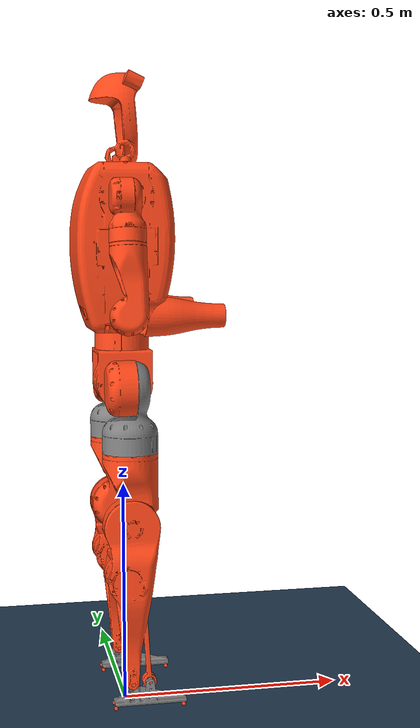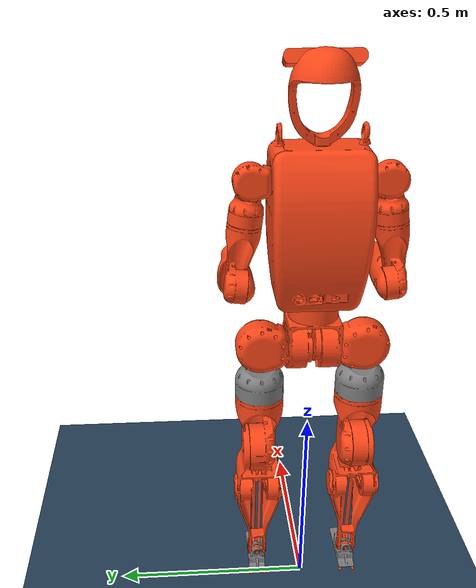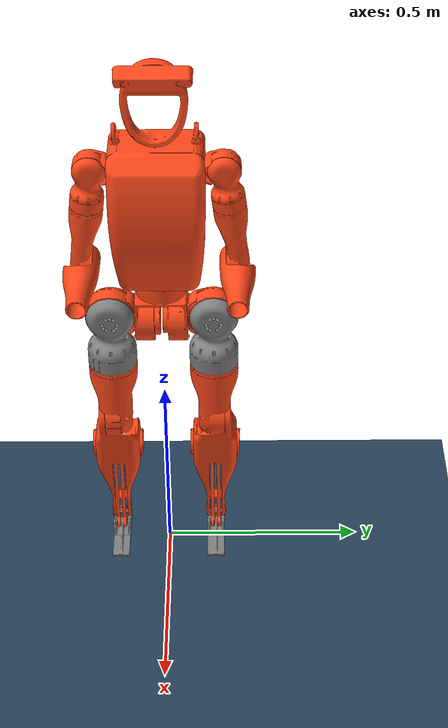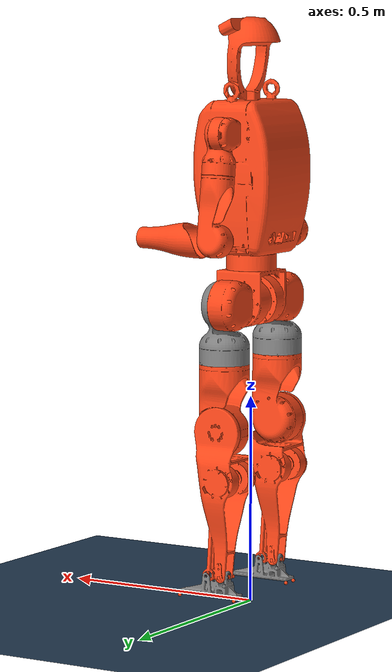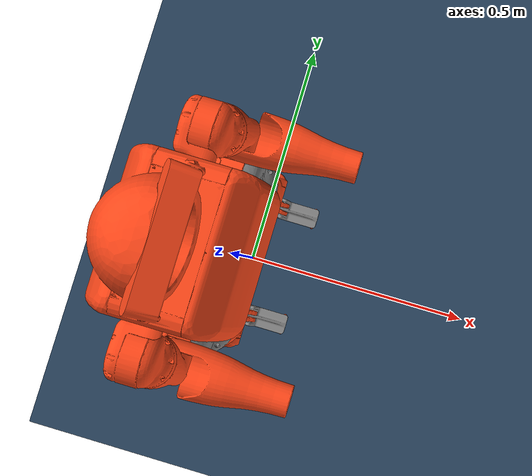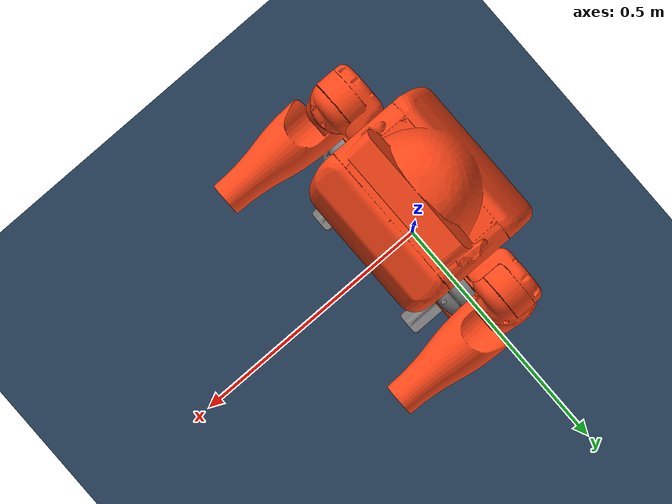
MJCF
<mujoco model="q2_19dof scene">
  <include file="q2_19dof.xml"/>

  <statistic center="1.0 0.7 1.0" extent="0.8"/>

  <visual>
    <headlight diffuse="0.6 0.6 0.6" ambient="0.1 0.1 0.1" specular="0.9 0.9 0.9"/>
    <rgba haze="0.15 0.25 0.35 1"/>
    <global azimuth="-140" elevation="-20"/>
  </visual>

  <asset>
    <texture type="skybox" builtin="flat" rgb1="0 0 0" rgb2="0 0 0" width="512" height="3072"/>
    <texture type="2d" name="groundplane" builtin="checker" mark="edge" rgb1="0.2 0.3 0.4" rgb2="0.1 0.2 0.3" markrgb="0.8 0.8 0.8" width="300" height="300"/>
    <material name="groundplane" texture="groundplane" texuniform="true" texrepeat="5 5" reflectance="0.2"/>
  </asset>

  <worldbody>
    <light pos="1 0 3.5" dir="0 0 -1" directional="true"/>
    <geom name="floor" size="0 0 0.05" type="plane" material="groundplane"/>
        <!-- 地面 -->

  </worldbody>
</mujoco>

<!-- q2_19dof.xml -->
<mujoco model="q2_19dof">
  <default>
    <default class="robot">
      <default class="motor">
        <joint />
        <motor />
      </default>
      <default class="visual">
        <geom material="visualgeom" contype="0" conaffinity="0" group="2" />
      </default>
      <default class="collision">
        <geom material="collision_material" condim="3" contype="0" conaffinity="1" priority="1" group="1" solref="0.005 1" friction="1 0.01 0.01" />
        <equality solimp="0.99 0.999 1e-05" solref="0.005 1" />
      </default>
    </default>
    <joint damping="0.001" armature="0.01" frictionloss="0.1"/>
  </default>

  <compiler angle="radian" />

  <option timestep='0.001' iterations='50' solver='PGS' gravity='0 0 -9.81'>
      <flag frictionloss="enable"/>
  </option>

  <asset>
    <material name="default_material" rgba="0.7 0.7 0.7 1" />
    <material name="collision_material" rgba="1.0 0.28 0.1 0.9" />
    <mesh name="pelvis.STL" file="meshes/pelvis.STL" />
    <mesh name="left_hip_pitch_link.STL" file="meshes/left_hip_pitch_link.STL" />
    <mesh name="left_hip_roll_link.STL" file="meshes/left_hip_roll_link.STL" />
    <mesh name="left_hip_yaw_link.STL" file="meshes/left_hip_yaw_link.STL" />
    <mesh name="left_knee_link.STL" file="meshes/left_knee_link.STL" />
    <mesh name="left_ankle_pitch_link.STL" file="meshes/left_ankle_pitch_link.STL" />
    <mesh name="left_ankle_roll_link.STL" file="meshes/left_ankle_roll_link.STL" />
    <mesh name="right_hip_pitch_link.STL" file="meshes/right_hip_pitch_link.STL" />
    <mesh name="right_hip_roll_link.STL" file="meshes/right_hip_roll_link.STL" />
    <mesh name="right_hip_yaw_link.STL" file="meshes/right_hip_yaw_link.STL" />
    <mesh name="right_knee_link.STL" file="meshes/right_knee_link.STL" />
    <mesh name="right_ankle_pitch_link.STL" file="meshes/right_ankle_pitch_link.STL" />
    <mesh name="right_ankle_roll_link.STL" file="meshes/right_ankle_roll_link.STL" />
    <mesh name="torso_link.STL" file="meshes/torso_link.STL" />
    <mesh name="left_shoulder_pitch_link.STL" file="meshes/left_shoulder_pitch_link.STL" />
    <mesh name="left_shoulder_roll_link.STL" file="meshes/left_shoulder_roll_link.STL" />
    <mesh name="left_shoulder_yaw_link.STL" file="meshes/left_shoulder_yaw_link.STL" />
    <mesh name="left_elbow_link.STL" file="meshes/left_elbow_link.STL" />
    <mesh name="right_shoulder_pitch_link.STL" file="meshes/right_shoulder_pitch_link.STL" />
    <mesh name="right_shoulder_roll_link.STL" file="meshes/right_shoulder_roll_link.STL" />
    <mesh name="right_shoulder_yaw_link.STL" file="meshes/right_shoulder_yaw_link.STL" />
    <mesh name="right_elbow_link.STL" file="meshes/right_elbow_link.STL" />
  </asset>

  <worldbody>
    <body name="pelvis" pos="0.00000000 0.00000000 0.800000" >
        <inertial pos="0.0000000 0.0000000 -0.0377830" quat="1.0 0.0 0.0 0.0" mass="5.0175069" diaginertia="0.0180892 0.016415 0.0108703" />
        <joint name="floating_base_joint" type="free" limited="false" actuatorfrclimited="false"/>
        <geom name="pelvis_collision" pos="0 0 0" quat="1.0 0.0 0.0 0.0" type="mesh" mesh="pelvis.STL" class="collision" />
        <geom name="pelvis_visual" pos="0 0 0" quat="1.0 0.0 0.0 0.0" material="" type="mesh" mesh="pelvis.STL" class="visual" />
        <body name="left_hip_pitch_link" pos="0 0.056 -0.0685" quat="1.0 0.0 0.0 0.0">
          <joint name="left_hip_pitch_joint" type="hinge" ref="0.0" class="motor" range="-2.35 2.35" axis="0 1 0" />
          <inertial pos="-0.0161091 0.0642172 0.0000000" quat="1.0 0.0 0.0 0.0" mass="1.871603" diaginertia="0.0035823 0.0021368 0.0024927" />
          <geom name="left_hip_pitch_link_collision" pos="0 0 0" quat="1.0 0.0 0.0 0.0" type="mesh" mesh="left_hip_pitch_link.STL" class="collision" />
          <geom name="left_hip_pitch_link_visual" pos="0 0 0" quat="1.0 0.0 0.0 0.0" material="" type="mesh" mesh="left_hip_pitch_link.STL" class="visual" />
          <body name="left_hip_roll_link" pos="0.012 0.069 0" quat="1.0 0.0 0.0 0.0">
            <joint name="left_hip_roll_joint" type="hinge" ref="0.0" class="motor" range="-0.2 2.9" axis="1 0 0" />
            <inertial pos="-0.0070439 -0.0000032 -0.0909871" quat="1.0 0.0 0.0 0.0" mass="2.1194499" diaginertia="0.0063862 0.0063266 0.0036912" />
            <geom name="left_hip_roll_link_visual" pos="0 0 0" quat="1.0 0.0 0.0 0.0" material="" type="mesh" mesh="left_hip_roll_link.STL" class="visual" />
            <body name="left_hip_yaw_link" pos="-0.012 0 -0.1395" quat="1.0 0.0 0.0 0.0">
              <joint name="left_hip_yaw_joint" type="hinge" ref="0.0" class="motor" range="-2.8 2.8" axis="0 0 1" />
              <inertial pos="0.0030582 -0.0028146 -0.1280729" quat="1.0 0.0 0.0 0.0" mass="2.4878491" diaginertia="0.0107399 0.0117862 0.003867" />
              <geom name="left_hip_yaw_link_collision" pos="0 0 0" quat="1.0 0.0 0.0 0.0" type="mesh" mesh="left_hip_yaw_link.STL" class="collision" />
              <geom name="left_hip_yaw_link_visual" pos="0 0 0" quat="1.0 0.0 0.0 0.0" material="" type="mesh" mesh="left_hip_yaw_link.STL" class="visual" />
              <body name="left_knee_link" pos="0 0.0255 -0.1605" quat="1.0 0.0 0.0 0.0">
                <joint name="left_knee_joint" type="hinge" ref="0.0" class="motor" range="-0.26 2.05" axis="0 1 0" />
                <inertial pos="0.0016871 -0.0202758 -0.1209121" quat="1.0 0.0 0.0 0.0" mass="2.1687705" diaginertia="0.0161842 0.0144942 0.0039929" />
                <geom name="left_knee_link_collision" pos="0 0 0" quat="1.0 0.0 0.0 0.0" type="mesh" mesh="left_knee_link.STL" class="collision" />
                <geom name="left_knee_link_visual" pos="0 0 0" quat="1.0 0.0 0.0 0.0" material="" type="mesh" mesh="left_knee_link.STL" class="visual" />
                <body name="left_ankle_pitch_link" pos="0 -0.0255 -0.35" quat="1.0 0.0 0.0 0.0">
                  <joint name="left_ankle_pitch_joint" type="hinge" ref="0.0" class="motor" range="-0.75 0.75" axis="0 1 0" />
                  <inertial pos="0.0000000 0.0000000 0.0000279" quat="1.0 0.0 0.0 0.0" mass="0.0312897" diaginertia="6.8e-06 1.6e-06 7.3e-06" />
                  <geom name="left_ankle_pitch_link_collision" pos="0 0 0" quat="1.0 0.0 0.0 0.0" type="mesh" mesh="left_ankle_pitch_link.STL" class="collision" />
                  <geom name="left_ankle_pitch_link_visual" pos="0 0 0" quat="1.0 0.0 0.0 0.0" material="" type="mesh" mesh="left_ankle_pitch_link.STL" class="visual" />
                  <body name="left_ankle_roll_link" pos="0 0 0" quat="1.0 0.0 0.0 0.0">
                    <inertial pos="0.0300502 0.0000000 -0.0348065" quat="1.0 0.0 0.0 0.0" mass="0.445514" diaginertia="0.0001691 0.0007648 0.0007313" />
                    <geom name="left_ankle_roll_link_collision_0" pos="0.112 -0.019 -0.053" quat="1.0 0.0 0.0 0.0" type="sphere" size="0.0045" class="collision" />
                    <geom name="left_ankle_roll_link_collision_1" pos="0.112 0.019 -0.053" quat="1.0 0.0 0.0 0.0" type="sphere" size="0.0045" class="collision" />
                    <geom name="left_ankle_roll_link_collision_2" pos="-0.038 -0.018 -0.053" quat="1.0 0.0 0.0 0.0" type="sphere" size="0.0045" class="collision" />
                    <geom name="left_ankle_roll_link_collision_3" pos="-0.038 0.018 -0.053" quat="1.0 0.0 0.0 0.0" type="sphere" size="0.0045" class="collision" />
                    <geom name="left_ankle_roll_link_visual" pos="0 0 0" quat="1.0 0.0 0.0 0.0" material="" type="mesh" mesh="left_ankle_roll_link.STL" class="visual" />
                  </body>
                </body>
              </body>
            </body>
          </body>
        </body>
        <body name="right_hip_pitch_link" pos="0 -0.056 -0.0685" quat="1.0 0.0 0.0 0.0">
          <joint name="right_hip_pitch_joint" type="hinge" ref="0.0" class="motor" range="-2.35 2.35" axis="0 1 0" />
          <inertial pos="-0.0161085 -0.0642181 0.0000000" quat="1.0 0.0 0.0 0.0" mass="1.8719556" diaginertia="0.0035829 0.0021371 0.002493" />
          <geom name="right_hip_pitch_link_collision" pos="0 0 0" quat="1.0 0.0 0.0 0.0" type="mesh" mesh="right_hip_pitch_link.STL" class="collision" />
          <geom name="right_hip_pitch_link_visual" pos="0 0 0" quat="1.0 0.0 0.0 0.0" material="" type="mesh" mesh="right_hip_pitch_link.STL" class="visual" />
          <body name="right_hip_roll_link" pos="0.012 -0.069 0" quat="1.0 0.0 0.0 0.0">
            <joint name="right_hip_roll_joint" type="hinge" ref="0.0" class="motor" range="-2.9 0.2" axis="1 0 0" />
            <inertial pos="-0.0070439 -0.0000032 -0.0909871" quat="1.0 0.0 0.0 0.0" mass="2.1194499" diaginertia="0.0063862 0.0063266 0.0036912" />
            <geom name="right_hip_roll_link_visual" pos="0 0 0" quat="1.0 0.0 0.0 0.0" material="" type="mesh" mesh="right_hip_roll_link.STL" class="visual" />
            <body name="right_hip_yaw_link" pos="-0.012 0 -0.1395" quat="1.0 0.0 0.0 0.0">
              <joint name="right_hip_yaw_joint" type="hinge" ref="0.0" class="motor" range="-2.8 2.8" axis="0 0 1" />
              <inertial pos="0.0030618 0.0028152 -0.1281604" quat="1.0 0.0 0.0 0.0" mass="2.4854678" diaginertia="0.0107105 0.0117564 0.0038603" />
              <geom name="right_hip_yaw_link_collision" pos="0 0 0" quat="1.0 0.0 0.0 0.0" type="mesh" mesh="right_hip_yaw_link.STL" class="collision" />
              <geom name="right_hip_yaw_link_visual" pos="0 0 0" quat="1.0 0.0 0.0 0.0" material="" type="mesh" mesh="right_hip_yaw_link.STL" class="visual" />
              <body name="right_knee_link" pos="0 -0.0255 -0.1605" quat="1.0 0.0 0.0 0.0">
                <joint name="right_knee_joint" type="hinge" ref="0.0" class="motor" range="-0.26 2.05" axis="0 1 0" />
                <inertial pos="0.0016703 0.0200408 -0.1207901" quat="1.0 0.0 0.0 0.0" mass="2.1688182" diaginertia="0.0162684 0.0145337 0.0040332" />
                <geom name="right_knee_link_collision" pos="0 0 0" quat="1.0 0.0 0.0 0.0" type="mesh" mesh="right_knee_link.STL" class="collision" />
                <geom name="right_knee_link_visual" pos="0 0 0" quat="1.0 0.0 0.0 0.0" material="" type="mesh" mesh="right_knee_link.STL" class="visual" />
                <body name="right_ankle_pitch_link" pos="0 0.0255 -0.35" quat="1.0 0.0 0.0 0.0">
                  <joint name="right_ankle_pitch_joint" type="hinge" ref="0.0" class="motor" range="-0.75 0.75" axis="0 1 0" />
                  <inertial pos="0.0000000 0.0000000 0.0000279" quat="1.0 0.0 0.0 0.0" mass="0.0312897" diaginertia="6.8e-06 1.6e-06 7.3e-06" />
                  <geom name="right_ankle_pitch_link_collision" pos="0 0 0" quat="1.0 0.0 0.0 0.0" type="mesh" mesh="right_ankle_pitch_link.STL" class="collision" />
                  <geom name="right_ankle_pitch_link_visual" pos="0 0 0" quat="1.0 0.0 0.0 0.0" material="" type="mesh" mesh="right_ankle_pitch_link.STL" class="visual" />
                  <body name="right_ankle_roll_link" pos="0 0 0" quat="1.0 0.0 0.0 0.0">
                    <inertial pos="0.0300502 0.0000000 -0.0348065" quat="1.0 0.0 0.0 0.0" mass="0.445514" diaginertia="0.0001691 0.0007648 0.0007313" />
                    <geom name="right_ankle_roll_link_collision_0" pos="0.112 -0.019 -0.053" quat="1.0 0.0 0.0 0.0" type="sphere" size="0.0045" class="collision" />
                    <geom name="right_ankle_roll_link_collision_1" pos="0.112 0.019 -0.053" quat="1.0 0.0 0.0 0.0" type="sphere" size="0.0045" class="collision" />
                    <geom name="right_ankle_roll_link_collision_2" pos="-0.038 -0.018 -0.053" quat="1.0 0.0 0.0 0.0" type="sphere" size="0.0045" class="collision" />
                    <geom name="right_ankle_roll_link_collision_3" pos="-0.038 0.018 -0.053" quat="1.0 0.0 0.0 0.0" type="sphere" size="0.0045" class="collision" />
                    <geom name="right_ankle_roll_link_visual" pos="0 0 0" quat="1.0 0.0 0.0 0.0" material="" type="mesh" mesh="right_ankle_roll_link.STL" class="visual" />
                  </body>
                </body>
              </body>
            </body>
          </body>
        </body>
        <body name="torso_link" pos="0 0 0.046" quat="1.0 0.0 0.0 0.0">
          <joint name="torso_joint" type="hinge" ref="0.0" class="motor" range="-1.1 1.1" axis="0 0 1" />
          <inertial pos="0.0004629 -0.0000906 0.1938121" quat="1.0 0.0 0.0 0.0" mass="13.5166565" diaginertia="0.2213687 0.1979885 0.0923944" />
          <geom name="torso_link_collision" pos="0 0 0" quat="1.0 0.0 0.0 0.0" type="mesh" mesh="torso_link.STL" class="collision" />
          <geom name="torso_link_visual" pos="0 0 0" quat="1.0 0.0 0.0 0.0" material="" type="mesh" mesh="torso_link.STL" class="visual" />
          <body name="left_shoulder_pitch_link" pos="0 0.1045 0.2905" quat="1.0 0.0 0.0 0.0">
            <joint name="left_shoulder_pitch_joint" type="hinge" ref="0.0" class="motor" range="-3.14 1.57" axis="0 1 0" />
            <inertial pos="-0.0156870 0.0446137 0.0003011" quat="1.0 0.0 0.0 0.0" mass="0.5474344" diaginertia="0.0002167 0.0001337 0.0001874" />
            <geom name="left_shoulder_pitch_link_collision" pos="0 0 0" quat="1.0 0.0 0.0 0.0" type="mesh" mesh="left_shoulder_pitch_link.STL" class="collision" />
            <geom name="left_shoulder_pitch_link_visual" pos="0 0 0" quat="1.0 0.0 0.0 0.0" material="" type="mesh" mesh="left_shoulder_pitch_link.STL" class="visual" />
            <body name="left_shoulder_roll_link" pos="0.01 0.049 0" quat="0.9982005399352042 0.059964006479444595 0.0 0.0">
              <joint name="left_shoulder_roll_joint" type="hinge" ref="0.0" class="motor" range="-0.01 3.14" axis="1 0 0" />
              <inertial pos="-0.0127037 -0.0001940 -0.0659292" quat="1.0 0.0 0.0 0.0" mass="0.5461248" diaginertia="0.000472 0.0004811 0.0001598" />
              <geom name="left_shoulder_roll_link_collision" pos="0 0 0" quat="1.0 0.0 0.0 0.0" type="mesh" mesh="left_shoulder_roll_link.STL" class="collision" />
              <geom name="left_shoulder_roll_link_visual" pos="0 0 0" quat="1.0 0.0 0.0 0.0" material="" type="mesh" mesh="left_shoulder_roll_link.STL" class="visual" />
              <body name="left_shoulder_yaw_link" pos="-0.016 0 -0.101" quat="1.0 0.0 0.0 0.0">
                <joint name="left_shoulder_yaw_joint" type="hinge" ref="0.0" class="motor" range="-0.8 1.2" axis="0 0 1" />
                <inertial pos="0.0032500 0.0002300 -0.1178721" quat="1.0 0.0 0.0 0.0" mass="0.7134352" diaginertia="0.002108 0.002127 0.0003381" />
                <geom name="left_shoulder_yaw_link_collision" pos="0 0 0" quat="1.0 0.0 0.0 0.0" type="mesh" mesh="left_shoulder_yaw_link.STL" class="collision" />
                <geom name="left_shoulder_yaw_link_visual" pos="0 0 0" quat="1.0 0.0 0.0 0.0" material="" type="mesh" mesh="left_shoulder_yaw_link.STL" class="visual" />
                <body name="left_elbow_link" pos="0 -0.027 -0.149" quat="1.0 0.0 0.0 0.0">
                  <joint name="left_elbow_joint" type="hinge" ref="0.0" class="motor" range="-0.95 1.6" axis="0 1 0" />
                  <inertial pos="0.0914047 0.0199364 -0.0026722" quat="1.0 0.0 0.0 0.0" mass="0.3282012" diaginertia="0.0003673 0.0013996 0.0014536" />
                  <geom name="left_elbow_link_collision" pos="0 0 0" quat="1.0 0.0 0.0 0.0" type="mesh" mesh="left_elbow_link.STL" class="collision" />
                  <geom name="left_elbow_link_visual" pos="0 0 0" quat="1.0 0.0 0.0 0.0" material="" type="mesh" mesh="left_elbow_link.STL" class="visual" />
                </body>
              </body>
            </body>
          </body>
          <body name="right_shoulder_pitch_link" pos="0 -0.1045 0.2905" quat="1.0 0.0 0.0 0.0">
            <joint name="right_shoulder_pitch_joint" type="hinge" ref="0.0" class="motor" range="-3.14 1.57" axis="0 1 0" />
            <inertial pos="-0.0156870 -0.0446137 -0.0003011" quat="1.0 0.0 0.0 0.0" mass="0.5474344" diaginertia="0.0002167 0.0001337 0.0001874" />
            <geom name="right_shoulder_pitch_link_collision" pos="0 0 0" quat="1.0 0.0 0.0 0.0" type="mesh" mesh="right_shoulder_pitch_link.STL" class="collision" />
            <geom name="right_shoulder_pitch_link_visual" pos="0 0 0" quat="1.0 0.0 0.0 0.0" material="" type="mesh" mesh="right_shoulder_pitch_link.STL" class="visual" />
            <body name="right_shoulder_roll_link" pos="0.01 -0.049 0" quat="0.9982005399352042 -0.059964006479444595 0.0 0.0">
              <joint name="right_shoulder_roll_joint" type="hinge" ref="0.0" class="motor" range="-3.4 0.01" axis="1 0 0" />
              <inertial pos="-0.0127037 -0.0001940 -0.0659292" quat="1.0 0.0 0.0 0.0" mass="0.5461248" diaginertia="0.000472 0.0004811 0.0001598" />
              <geom name="right_shoulder_roll_link_collision" pos="0 0 0" quat="1.0 0.0 0.0 0.0" type="mesh" mesh="right_shoulder_roll_link.STL" class="collision" />
              <geom name="right_shoulder_roll_link_visual" pos="0 0 0" quat="1.0 0.0 0.0 0.0" material="" type="mesh" mesh="right_shoulder_roll_link.STL" class="visual" />
              <body name="right_shoulder_yaw_link" pos="-0.016 0 -0.101" quat="1.0 0.0 0.0 0.0">
                <joint name="right_shoulder_yaw_joint" type="hinge" ref="0.0" class="motor" range="-1.2 0.8" axis="0 0 1" />
                <inertial pos="0.0028726 -0.0002293 -0.1176072" quat="1.0 0.0 0.0 0.0" mass="0.7134571" diaginertia="0.0020963 0.0021169 0.0003397" />
                <geom name="right_shoulder_yaw_link_collision" pos="0 0 0" quat="1.0 0.0 0.0 0.0" type="mesh" mesh="right_shoulder_yaw_link.STL" class="collision" />
                <geom name="right_shoulder_yaw_link_visual" pos="0 0 0" quat="1.0 0.0 0.0 0.0" material="" type="mesh" mesh="right_shoulder_yaw_link.STL" class="visual" />
                <body name="right_elbow_link" pos="0 0.027 -0.149" quat="1.0 0.0 0.0 0.0">
                  <joint name="right_elbow_joint" type="hinge" ref="0.0" class="motor" range="-0.95 1.6" axis="0 1 0" />
                  <inertial pos="0.0914095 0.0340633 -0.0026701" quat="1.0 0.0 0.0 0.0" mass="0.32819" diaginertia="0.0003673 0.0013994 0.0014534" />
                  <geom name="right_elbow_link_collision" pos="0 0 0" quat="1.0 0.0 0.0 0.0" type="mesh" mesh="right_elbow_link.STL" class="collision" />
                  <geom name="right_elbow_link_visual" pos="0 0 0" quat="1.0 0.0 0.0 0.0" material="" type="mesh" mesh="right_elbow_link.STL" class="visual" />
                </body>
              </body>
            </body>
          </body>
        </body>
      </body>
  </worldbody>

  <actuator>
    <motor name="left_hip_pitch_joint_ctrl" joint="left_hip_pitch_joint" class="motor" />
    <motor name="left_hip_roll_joint_ctrl" joint="left_hip_roll_joint" class="motor" />
    <motor name="left_hip_yaw_joint_ctrl" joint="left_hip_yaw_joint" class="motor" />
    <motor name="left_knee_joint_ctrl" joint="left_knee_joint" class="motor" />
    <motor name="left_ankle_pitch_joint_ctrl" joint="left_ankle_pitch_joint" class="motor" />
    <motor name="right_hip_pitch_joint_ctrl" joint="right_hip_pitch_joint" class="motor" />
    <motor name="right_hip_roll_joint_ctrl" joint="right_hip_roll_joint" class="motor" />
    <motor name="right_hip_yaw_joint_ctrl" joint="right_hip_yaw_joint" class="motor" />
    <motor name="right_knee_joint_ctrl" joint="right_knee_joint" class="motor" />
    <motor name="right_ankle_pitch_joint_ctrl" joint="right_ankle_pitch_joint" class="motor" />
    <motor name="torso_joint_ctrl" joint="torso_joint" class="motor" />
    <motor name="left_shoulder_pitch_joint_ctrl" joint="left_shoulder_pitch_joint" class="motor" />
    <motor name="left_shoulder_roll_joint_ctrl" joint="left_shoulder_roll_joint" class="motor" />
    <motor name="left_shoulder_yaw_joint_ctrl" joint="left_shoulder_yaw_joint" class="motor" />
    <motor name="left_elbow_joint_ctrl" joint="left_elbow_joint" class="motor" />
    <motor name="right_shoulder_pitch_joint_ctrl" joint="right_shoulder_pitch_joint" class="motor" />
    <motor name="right_shoulder_roll_joint_ctrl" joint="right_shoulder_roll_joint" class="motor" />
    <motor name="right_shoulder_yaw_joint_ctrl" joint="right_shoulder_yaw_joint" class="motor" />
    <motor name="right_elbow_joint_ctrl" joint="right_elbow_joint" class="motor" />
  </actuator>

  <contact>
    <exclude body1="pelvis" body2="left_hip_pitch_link" />
    <exclude body1="left_hip_yaw_link" body2="left_knee_link" />
    <exclude body1="left_knee_link" body2="left_ankle_pitch_link" />
    <exclude body1="left_ankle_pitch_link" body2="left_ankle_roll_link" />
    <exclude body1="pelvis" body2="right_hip_pitch_link" />
    <exclude body1="right_hip_yaw_link" body2="right_knee_link" />
    <exclude body1="right_knee_link" body2="right_ankle_pitch_link" />
    <exclude body1="right_ankle_pitch_link" body2="right_ankle_roll_link" />
    <exclude body1="pelvis" body2="torso_link" />
    <exclude body1="torso_link" body2="left_shoulder_pitch_link" />
    <exclude body1="left_shoulder_pitch_link" body2="left_shoulder_roll_link" />
    <exclude body1="left_shoulder_roll_link" body2="left_shoulder_yaw_link" />
    <exclude body1="left_shoulder_yaw_link" body2="left_elbow_link" />
    <exclude body1="torso_link" body2="right_shoulder_pitch_link" />
    <exclude body1="right_shoulder_pitch_link" body2="right_shoulder_roll_link" />
    <exclude body1="right_shoulder_roll_link" body2="right_shoulder_yaw_link" />
    <exclude body1="right_shoulder_yaw_link" body2="right_elbow_link" />
  </contact>

  <sensor>
    <framepos name="world_site_pos" objtype="site" objname="world_site" />
    <framequat name="world_site_quat" objtype="site" objname="world_site" />
    <framelinvel name="world_site_linvel" objtype="site" objname="world_site" />
    <frameangvel name="world_site_angvel" objtype="site" objname="world_site" />
    <velocimeter name="world_site_vel" site="world_site" />
  </sensor>
    <asset>
        <texture type="skybox" builtin="flat" rgb1="0 0 0" rgb2="0 0 0" width="512" height="3072"/>
        <texture type="2d" name="groundplane" builtin="checker" mark="edge" rgb1="0.2 0.3 0.4" rgb2="0.1 0.2 0.3" markrgb="0.8 0.8 0.8" width="300" height="300"/>
        <material name="groundplane" texture="groundplane" texuniform="true" texrepeat="5 5" reflectance="0.2"/>
    </asset>
    <worldbody>
      <light pos="1 0 3.5" dir="0 0 -1" directional="true"/>
      <geom contype="15" conaffinity="15"  name="floor" size="0 0 0.05" type="plane" material="groundplane"/>
      <site name="world_site" pos="0 0 0" quat="1 0 0 0" />
      <camera name="front_camera" mode="track" fovy="90.0" quat="4.329780281177467e-17 4.329780281177466e-17 0.7071067811865475 0.7071067811865476" pos="0.0 2.0 0.5" />
      <camera name="side_camera" mode="track" fovy="90.0" quat="-0.5 -0.4999999999999999 0.5 0.5000000000000001" pos="-2.0 0.0 0.5" />
    </worldbody>
</mujoco>
